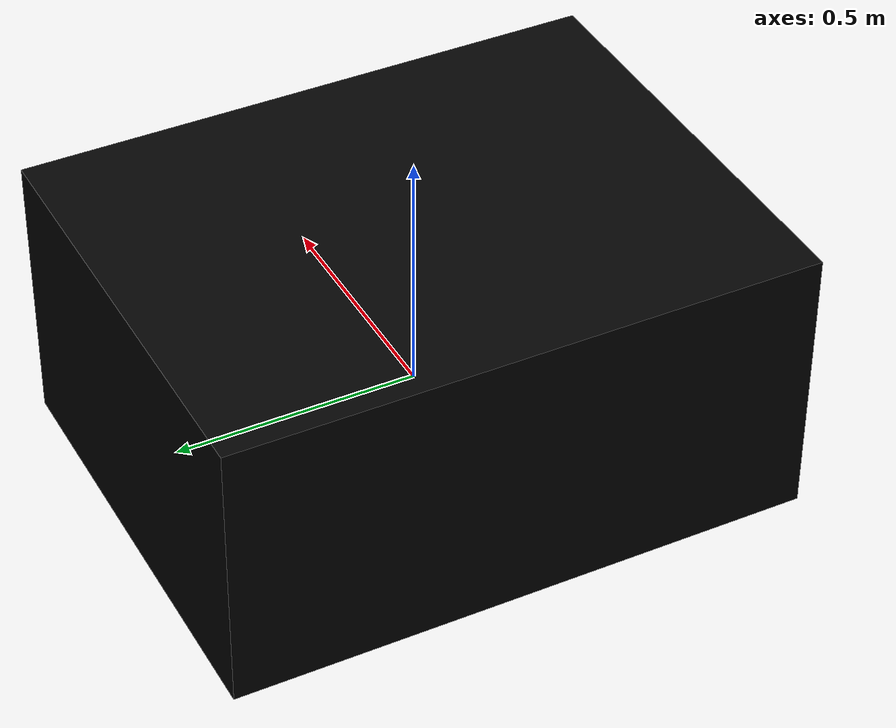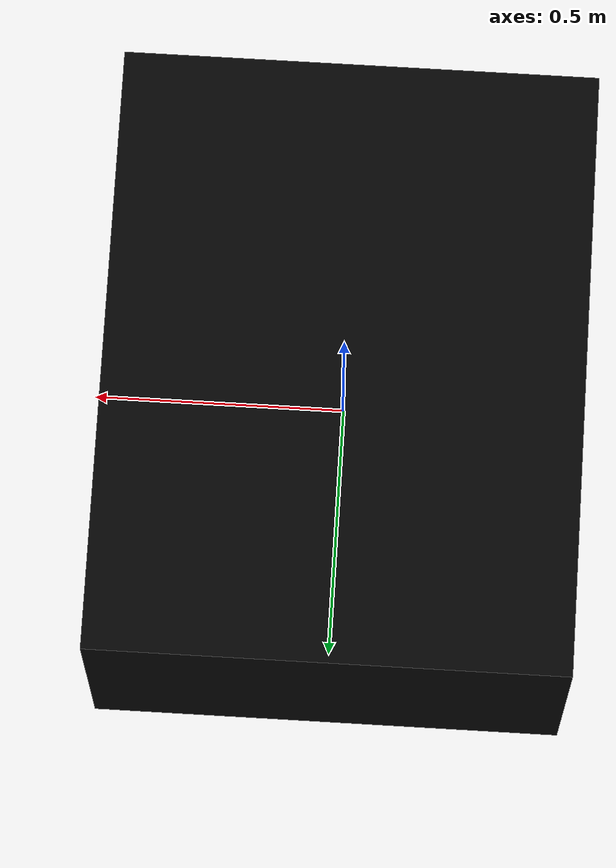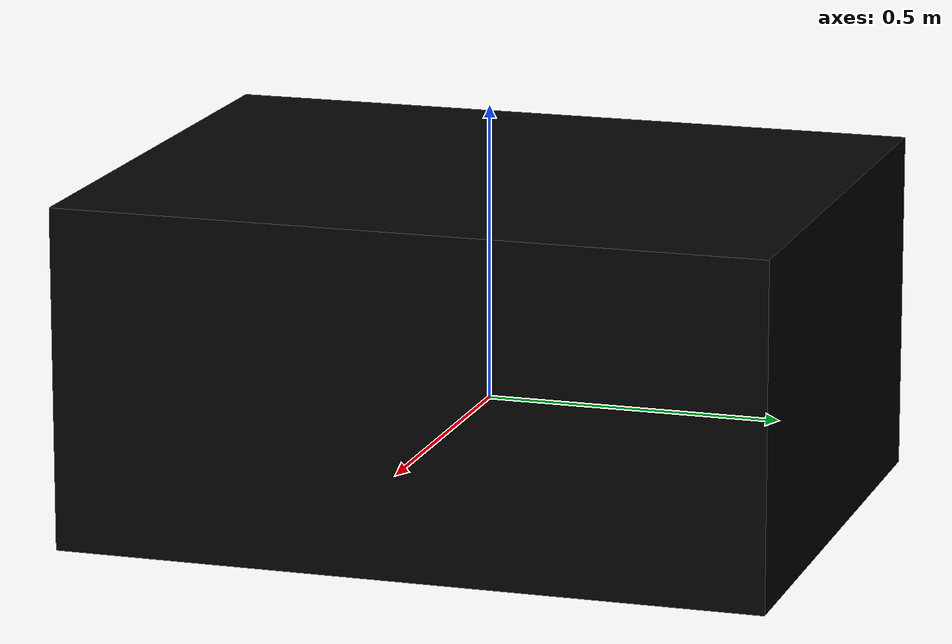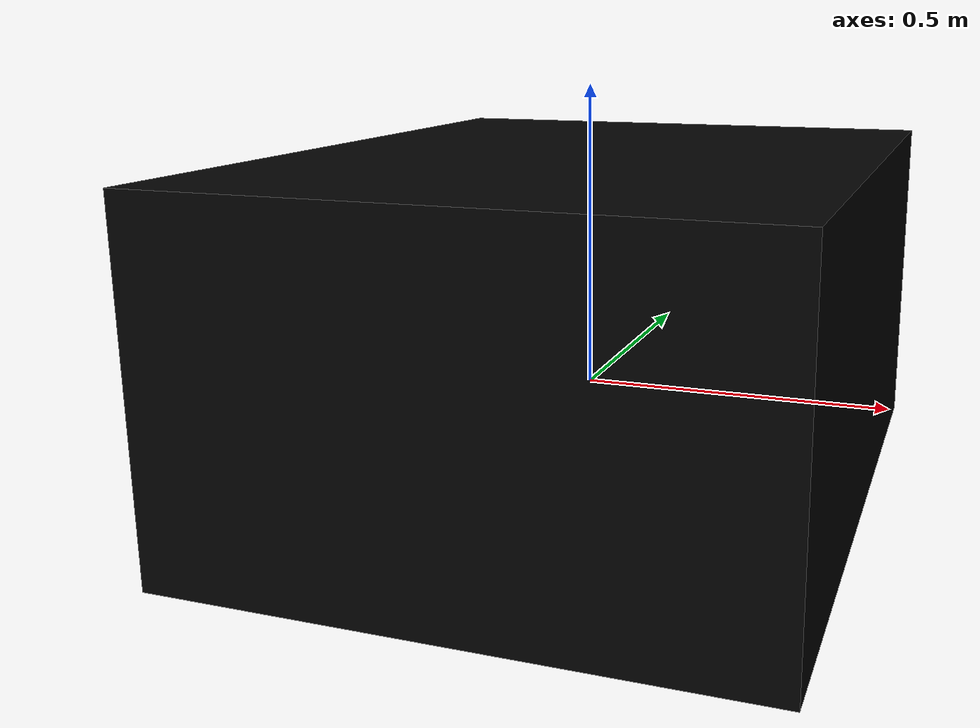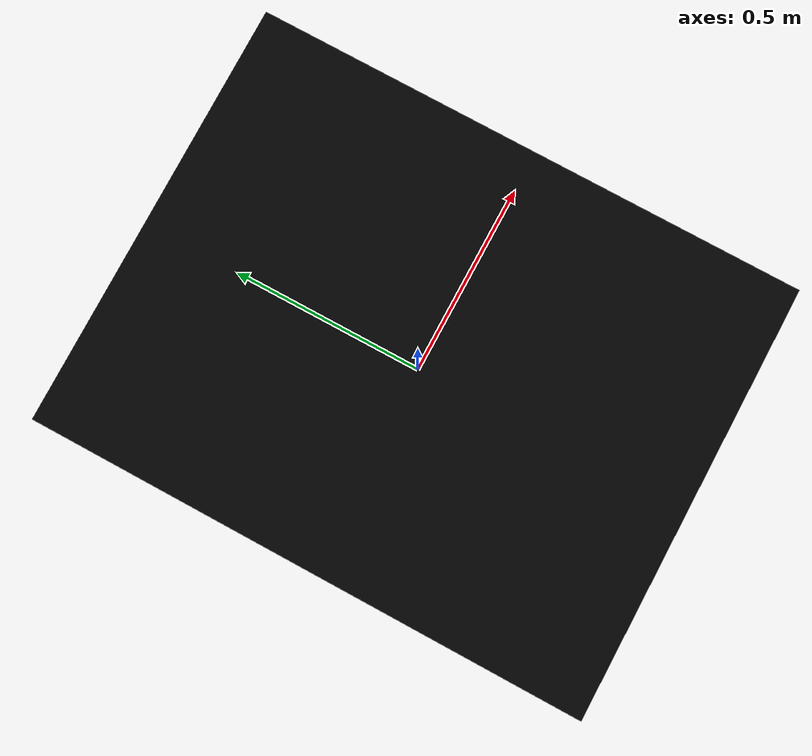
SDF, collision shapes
<?xml version="1.0" ?>
<sdf version="1.6">
  <model name="rover_sdf">
    <static>false</static>
    <allow_auto_disable>true</allow_auto_disable>
    <link name="base_link">
      <pose>0.000000 0.000000 0.100000 0.000000 0.000000 0.000000</pose>
      <inertial>
        <mass>20.000000</mass>
        <inertia>
          <ixx>2.954502</ixx>
          <ixy>0</ixy>
          <ixz>0</ixz>
          <iyy>2.005160</iyy>
          <iyz>0</iyz>
          <izz>3.850658</izz>
        </inertia>
      </inertial>
      <visual name="base_visual">
        <geometry>
          <mesh>
            <uri>model://rover_sdf/meshes/base_link.dae</uri>
            <scale>0.005312 0.005312 0.005312</scale>
          </mesh>
        </geometry>
        <material>

          <ambient>0.011426 0.011426 0.011426 1</ambient>

          <diffuse>0.011426 0.011426 0.011426 1.000000</diffuse>

          <emissive>0.000686 0.000686 0.000686 1</emissive>

          <script>

            <uri>model://rover_sdf/materials/scripts</uri>

            <uri>model://rover_sdf/materials/textures</uri>

            <name>rover_sdf/flat_030303ff</name>

          </script>

        </material>
      </visual>
      <collision name="base_box_col">
        <pose>0 0 0 0 0 0</pose>
        <geometry>
          <box>
            <size>0.932949 1.200000 0.576802</size>
          </box>
        </geometry>
        <surface>
          <friction>
            <ode mu="1.0" mu2="1.0"/>
          </friction>
          <contact>
            <ode kp="200000.0" kd="2.0"/>
          </contact>
        </surface>
      </collision>
    </link>
    <link name="wheel1">
      <pose>0.385270 0.351824 0.006320 0.000000 0.000000 0.000000</pose>
      <inertial>
        <mass>3.000000</mass>
        <inertia>
          <ixx>0.008506</ixx>
          <ixy>0</ixy>
          <ixz>0</ixz>
          <iyy>0.010571</iyy>
          <iyz>0</iyz>
          <izz>0.010571</izz>
        </inertia>
      </inertial>
      <visual name="wheel1_visual">
        <geometry>
          <mesh>
            <uri>model://rover_sdf/meshes/wheel1.dae</uri>
            <scale>0.005312 0.005312 0.005312</scale>
          </mesh>
        </geometry>
        <material>

          <ambient>0.024098 0.024098 0.024098 1</ambient>

          <diffuse>0.024098 0.024098 0.024098 1.000000</diffuse>

          <emissive>0.001446 0.001446 0.001446 1</emissive>

          <script>

            <uri>model://rover_sdf/materials/scripts</uri>

            <uri>model://rover_sdf/materials/textures</uri>

            <name>rover_sdf/flat_060606ff</name>

          </script>

        </material>
      </visual>
      <collision name="wheel1_col">
        <pose>0.000000 0.000000 0.000000 0.000000 1.570796 0.000000</pose>
        <geometry>
          <cylinder>
            <radius>0.075302</radius>
            <length>0.158970</length>
          </cylinder>
        </geometry>
        <surface>
          <friction>
            <ode mu="1.0" mu2="1.0"/>
          </friction>
          <contact>
            <ode kp="200000.0" kd="2.0"/>
          </contact>
        </surface>
      </collision>
    </link>
    <joint name="wheel1_joint" type="revolute">
      <parent>base_link</parent>
      <child>wheel1</child>
      <pose>0.385270 0.351824 0.006320 0.000000 0.000000 0.000000</pose>
      <axis>
        <xyz>1 0 0</xyz>
        <dynamics>
          <damping>0.3</damping>
        </dynamics>
        <limit>
          <lower>-1e+16</lower>
          <upper>1e+16</upper>
          <effort>80.0</effort>
          <velocity>120.0</velocity>
        </limit>
      </axis>
    </joint>
    <link name="wheel2">
      <pose>-0.346569 0.352506 0.006318 0.000000 0.000000 0.000000</pose>
      <inertial>
        <mass>3.000000</mass>
        <inertia>
          <ixx>0.008506</ixx>
          <ixy>0</ixy>
          <ixz>0</ixz>
          <iyy>0.010631</iyy>
          <iyz>0</iyz>
          <izz>0.010631</izz>
        </inertia>
      </inertial>
      <visual name="wheel2_visual">
        <geometry>
          <mesh>
            <uri>model://rover_sdf/meshes/wheel2.dae</uri>
            <scale>0.005312 0.005312 0.005312</scale>
          </mesh>
        </geometry>
        <material>

          <ambient>0.024098 0.024098 0.024098 1</ambient>

          <diffuse>0.024098 0.024098 0.024098 1.000000</diffuse>

          <emissive>0.001446 0.001446 0.001446 1</emissive>

          <script>

            <uri>model://rover_sdf/materials/scripts</uri>

            <uri>model://rover_sdf/materials/textures</uri>

            <name>rover_sdf/flat_060606ff</name>

          </script>

        </material>
      </visual>
      <collision name="wheel2_col">
        <pose>0.000000 0.000000 0.000000 0.000000 1.570796 0.000000</pose>
        <geometry>
          <cylinder>
            <radius>0.075302</radius>
            <length>0.159729</length>
          </cylinder>
        </geometry>
        <surface>
          <friction>
            <ode mu="1.0" mu2="1.0"/>
          </friction>
          <contact>
            <ode kp="200000.0" kd="2.0"/>
          </contact>
        </surface>
      </collision>
    </link>
    <joint name="wheel2_joint" type="revolute">
      <parent>base_link</parent>
      <child>wheel2</child>
      <pose>-0.346569 0.352506 0.006318 0.000000 0.000000 0.000000</pose>
      <axis>
        <xyz>1 0 0</xyz>
        <dynamics>
          <damping>0.3</damping>
        </dynamics>
        <limit>
          <lower>-1e+16</lower>
          <upper>1e+16</upper>
          <effort>80.0</effort>
          <velocity>120.0</velocity>
        </limit>
      </axis>
    </joint>
    <link name="wheel3">
      <pose>-0.346796 -0.516399 0.006318 0.000000 0.000000 0.000000</pose>
      <inertial>
        <mass>3.000000</mass>
        <inertia>
          <ixx>0.008506</ixx>
          <ixy>0</ixy>
          <ixz>0</ixz>
          <iyy>0.010571</iyy>
          <iyz>0</iyz>
          <izz>0.010571</izz>
        </inertia>
      </inertial>
      <visual name="wheel3_visual">
        <geometry>
          <mesh>
            <uri>model://rover_sdf/meshes/wheel3.dae</uri>
            <scale>0.005312 0.005312 0.005312</scale>
          </mesh>
        </geometry>
        <material>

          <ambient>0.024098 0.024098 0.024098 1</ambient>

          <diffuse>0.024098 0.024098 0.024098 1.000000</diffuse>

          <emissive>0.001446 0.001446 0.001446 1</emissive>

          <script>

            <uri>model://rover_sdf/materials/scripts</uri>

            <uri>model://rover_sdf/materials/textures</uri>

            <name>rover_sdf/flat_060606ff</name>

          </script>

        </material>
      </visual>
      <collision name="wheel3_col">
        <pose>0.000000 0.000000 0.000000 0.000000 1.570796 0.000000</pose>
        <geometry>
          <cylinder>
            <radius>0.075302</radius>
            <length>0.158970</length>
          </cylinder>
        </geometry>
        <surface>
          <friction>
            <ode mu="1.0" mu2="1.0"/>
          </friction>
          <contact>
            <ode kp="200000.0" kd="2.0"/>
          </contact>
        </surface>
      </collision>
    </link>
    <joint name="wheel3_joint" type="revolute">
      <parent>base_link</parent>
      <child>wheel3</child>
      <pose>-0.346796 -0.516399 0.006318 0.000000 0.000000 0.000000</pose>
      <axis>
        <xyz>1 0 0</xyz>
        <dynamics>
          <damping>0.3</damping>
        </dynamics>
        <limit>
          <lower>-1e+16</lower>
          <upper>1e+16</upper>
          <effort>80.0</effort>
          <velocity>120.0</velocity>
        </limit>
      </axis>
    </joint>
    <link name="wheel4">
      <pose>0.385265 -0.516786 0.006318 0.000000 0.000000 0.000000</pose>
      <inertial>
        <mass>3.000000</mass>
        <inertia>
          <ixx>0.008698</ixx>
          <ixy>0</ixy>
          <ixz>0</ixz>
          <iyy>0.010696</iyy>
          <iyz>0</iyz>
          <izz>0.010696</izz>
        </inertia>
      </inertial>
      <visual name="wheel4_visual">
        <geometry>
          <mesh>
            <uri>model://rover_sdf/meshes/wheel4.dae</uri>
            <scale>0.005312 0.005312 0.005312</scale>
          </mesh>
        </geometry>
        <material>

          <ambient>0.001260 0.114458 0.994828 1</ambient>

          <diffuse>0.001260 0.114458 0.994828 1.000000</diffuse>

          <emissive>0.000076 0.006868 0.059690 1</emissive>

          <script>

            <uri>model://rover_sdf/materials/scripts</uri>

            <uri>model://rover_sdf/materials/textures</uri>

            <name>rover_sdf/flat_001dfeff</name>

          </script>

        </material>
      </visual>
      <collision name="wheel4_col">
        <pose>0.000000 0.000000 0.000000 0.000000 1.570796 0.000000</pose>
        <geometry>
          <cylinder>
            <radius>0.076150</radius>
            <length>0.159329</length>
          </cylinder>
        </geometry>
        <surface>
          <friction>
            <ode mu="1.0" mu2="1.0"/>
          </friction>
          <contact>
            <ode kp="200000.0" kd="2.0"/>
          </contact>
        </surface>
      </collision>
    </link>
    <joint name="wheel4_joint" type="revolute">
      <parent>base_link</parent>
      <child>wheel4</child>
      <pose>0.385265 -0.516786 0.006318 0.000000 0.000000 0.000000</pose>
      <axis>
        <xyz>1 0 0</xyz>
        <dynamics>
          <damping>0.3</damping>
        </dynamics>
        <limit>
          <lower>-1e+16</lower>
          <upper>1e+16</upper>
          <effort>80.0</effort>
          <velocity>120.0</velocity>
        </limit>
      </axis>
    </joint>
  </model>
</sdf>
